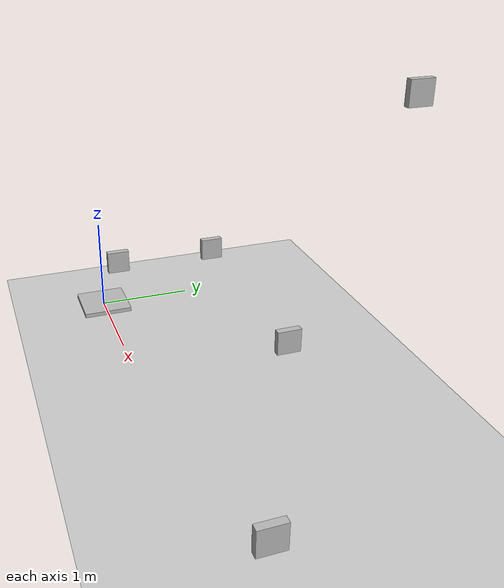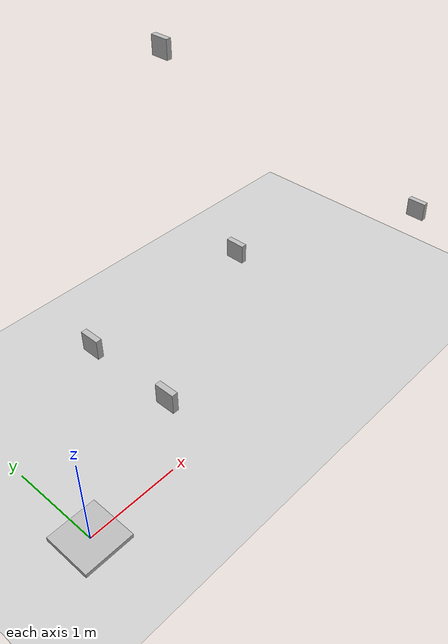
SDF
<sdf version="1.6">
 <world name="default">
  <light name="sun" type="directional">
   <cast_shadows>0</cast_shadows>
   <pose>0 0 10 0 -0 0</pose>
   <diffuse>0.8 0.8 0.8 1</diffuse>
   <specular>0.2 0.2 0.2 1</specular>
   <attenuation>
    <range>1000</range>
    <constant>0.9</constant>
    <linear>0.01</linear>
    <quadratic>0.001</quadratic>
   </attenuation>
   <direction>-0.5 0.1 -0.9</direction>
  </light>
  <model name="ground_plane">
   <static>1</static>
   <link name="link">
    <collision name="collision">
     <geometry><plane><normal>0 0 1</normal><size>200 200</size></plane></geometry>
     <surface><friction><ode><mu>100</mu><mu2>50</mu2></ode></friction></surface>
    </collision>
    <visual name="visual">
     <cast_shadows>0</cast_shadows>
     <geometry><plane><normal>0 0 1</normal><size>200 200</size></plane></geometry>
     <material>
      <script><uri>file://media/materials/scripts/gazebo.material</uri><name>Gazebo/Grey</name></script>
     </material>
    </visual>
   </link>
  </model>
  <physics name="default_physics" default="0" type="ode">
   <max_step_size>0.001</max_step_size>
   <real_time_factor>1</real_time_factor>
   <real_time_update_rate>1000</real_time_update_rate>
  </physics>
  <scene><ambient>0.4 0.4 0.4 1</ambient><background>0.7 0.7 0.7 1</background><shadows>0</shadows></scene>
  <spherical_coordinates>
   <surface_model>EARTH_WGS84</surface_model>
   <latitude_deg>0</latitude_deg>
   <longitude_deg>0</longitude_deg>
   <elevation>0</elevation>
   <heading_deg>0</heading_deg>
  </spherical_coordinates>
  <gravity>0 0 -9.8</gravity>
  <magnetic_field>6e-06 2.3e-05 -4.2e-05</magnetic_field>
  <atmosphere type="adiabatic"/>
  <model name="box">
   <static>1</static>
   <link name="link">
    <inertial>
     <mass>1</mass>
     <inertia><ixx>0.083</ixx><ixy>0</ixy><ixz>0</ixz><iyy>0.083</iyy><iyz>0</iyz><izz>0.083</izz></inertia>
    </inertial>
    <collision name="collision">
     <geometry><box><size>0.534061 0.534061 0.077921</size></box></geometry>
    </collision>
    <visual name="visual"><geometry><box><size>0.534061 0.534061 0.077921</size></box></geometry></visual>
   </link>
  </model>
  <model name="box_clone">
   <pose>1 0 1 0 -0 0</pose>
   <static>1</static>
   <link name="link">
    <inertial>
     <mass>1</mass>
     <inertia><ixx>0.083</ixx><ixy>0</ixy><ixz>0</ixz><iyy>0.083</iyy><iyz>0</iyz><izz>0.083</izz></inertia>
    </inertial>
    <collision name="collision">
     <geometry><box><size>0.062329 0.214695 0.216149</size></box></geometry>
    </collision>
    <visual name="visual"><geometry><box><size>0.062329 0.214695 0.216149</size></box></geometry></visual>
   </link>
  </model>
  <model name="box_clone_clone">
   <pose>1 1 1 0 -0 0</pose>
   <static>1</static>
   <link name="link">
    <inertial>
     <mass>1</mass>
     <inertia><ixx>0.083</ixx><ixy>0</ixy><ixz>0</ixz><iyy>0.083</iyy><iyz>0</iyz><izz>0.083</izz></inertia>
    </inertial>
    <collision name="collision">
     <geometry><box><size>0.062329 0.214695 0.216149</size></box></geometry>
    </collision>
    <visual name="visual"><geometry><box><size>0.062329 0.214695 0.216149</size></box></geometry></visual>
   </link>
  </model>
  <model name="box_clone_clone_0">
   <pose>3 2 3 0 -0 0</pose>
   <static>1</static>
   <link name="link">
    <inertial>
     <mass>1</mass>
     <inertia><ixx>0.083</ixx><ixy>0</ixy><ixz>0</ixz><iyy>0.083</iyy><iyz>0</iyz><izz>0.083</izz></inertia>
    </inertial>
    <collision name="collision">
     <geometry><box><size>0.062329 0.214695 0.216149</size></box></geometry>
    </collision>
    <visual name="visual"><geometry><box><size>0.062329 0.214695 0.216149</size></box></geometry></visual>
   </link>
  </model>
  <model name="box_clone_clone_1">
   <pose>3 1 1 0 -0 0</pose>
   <static>1</static>
   <link name="link">
    <inertial>
     <mass>1</mass>
     <inertia><ixx>0.083</ixx><ixy>0</ixy><ixz>0</ixz><iyy>0.083</iyy><iyz>0</iyz><izz>0.083</izz></inertia>
    </inertial>
    <collision name="collision">
     <geometry><box><size>0.062329 0.214695 0.216149</size></box></geometry>
    </collision>
    <visual name="visual"><geometry><box><size>0.062329 0.214695 0.216149</size></box></geometry></visual>
   </link>
  </model>
  <model name="box_clone_clone_1_clone">
   <pose>5 0 1 0 -0 0</pose>
   <static>1</static>
   <link name="link">
    <inertial>
     <mass>1</mass>
     <inertia><ixx>0.083</ixx><ixy>0</ixy><ixz>0</ixz><iyy>0.083</iyy><iyz>0</iyz><izz>0.083</izz></inertia>
    </inertial>
    <collision name="collision">
     <geometry><box><size>0.062329 0.214695 0.216149</size></box></geometry>
    </collision>
    <visual name="visual"><geometry><box><size>0.062329 0.214695 0.216149</size></box></geometry></visual>
   </link>
  </model>
 </world>
</sdf>
